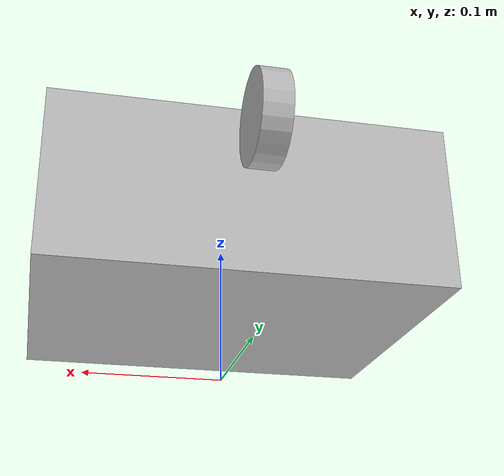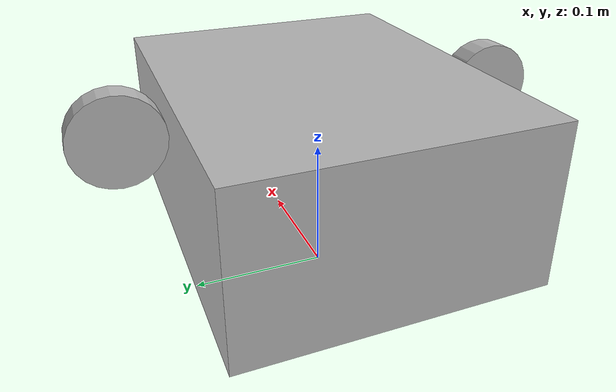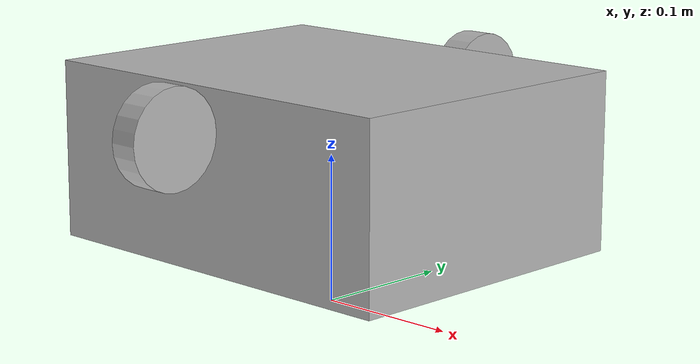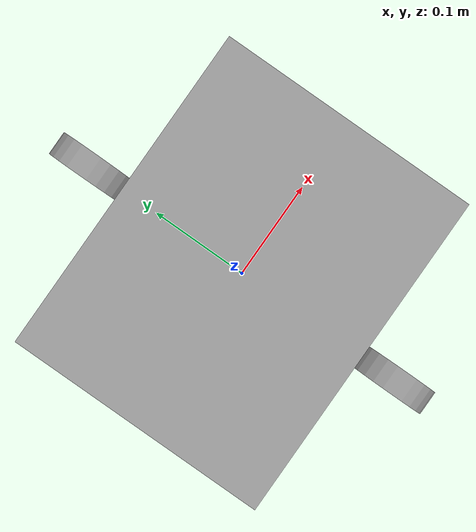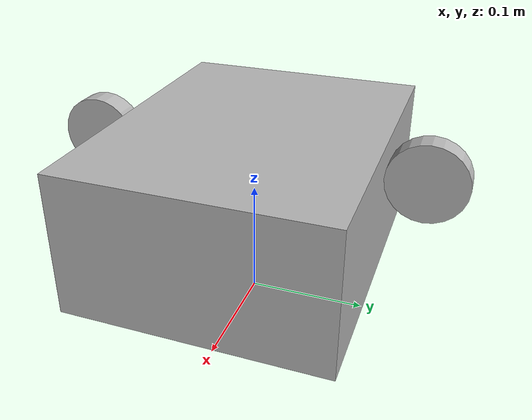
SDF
<sdf version="1.9">
  <model name="turtlebot">
    <pose>0 0 0.1 0 0 0</pose>

    <link name="base_link">
      <inertial>
        <mass>3.0</mass>
        <inertia>
          <ixx>0.03</ixx><ixy>0.0</ixy><ixz>0.0</ixz>
          <iyy>0.03</iyy><iyz>0.0</iyz>
          <izz>0.05</izz>
        </inertia>
      </inertial>
      <collision name="base_collision">
        <geometry><box><size>0.28 0.22 0.12</size></box></geometry>
      </collision>
      <visual name="base_visual">
        <geometry><box><size>0.28 0.22 0.12</size></box></geometry>
      </visual>
    </link>

    <link name="left_wheel_link">
      <pose>0 0.1435 0.033 0 1.57079632679 0</pose>
      <inertial>
        <mass>0.2</mass>
        <inertia>
          <ixx>0.0002</ixx><ixy>0.0</ixy><ixz>0.0</ixz>
          <iyy>0.0002</iyy><iyz>0.0</iyz>
          <izz>0.0002</izz>
        </inertia>
      </inertial>
      <collision name="left_wheel_collision">
        <geometry><cylinder><radius>0.033</radius><length>0.02</length></cylinder></geometry>
      </collision>
      <visual name="left_wheel_visual">
        <geometry><cylinder><radius>0.033</radius><length>0.02</length></cylinder></geometry>
      </visual>
    </link>

    <link name="right_wheel_link">
      <pose>0 -0.1435 0.033 0 1.57079632679 0</pose>
      <inertial>
        <mass>0.2</mass>
        <inertia>
          <ixx>0.0002</ixx><ixy>0.0</ixy><ixz>0.0</ixz>
          <iyy>0.0002</iyy><iyz>0.0</iyz>
          <izz>0.0002</izz>
        </inertia>
      </inertial>
      <collision name="right_wheel_collision">
        <geometry><cylinder><radius>0.033</radius><length>0.02</length></cylinder></geometry>
      </collision>
      <visual name="right_wheel_visual">
        <geometry><cylinder><radius>0.033</radius><length>0.02</length></cylinder></geometry>
      </visual>
    </link>

    <joint name="left_wheel_joint" type="revolute">
      <parent>base_link</parent>
      <child>left_wheel_link</child>
      <axis>
        <xyz>0 1 0</xyz>
        <limit><lower>-1e16</lower><upper>1e16</upper><effort>10</effort><velocity>100</velocity></limit>
      </axis>
    </joint>

    <joint name="right_wheel_joint" type="revolute">
      <parent>base_link</parent>
      <child>right_wheel_link</child>
      <axis>
        <xyz>0 1 0</xyz>
        <limit><lower>-1e16</lower><upper>1e16</upper><effort>10</effort><velocity>100</velocity></limit>
      </axis>
    </joint>
  </model>
</sdf>
